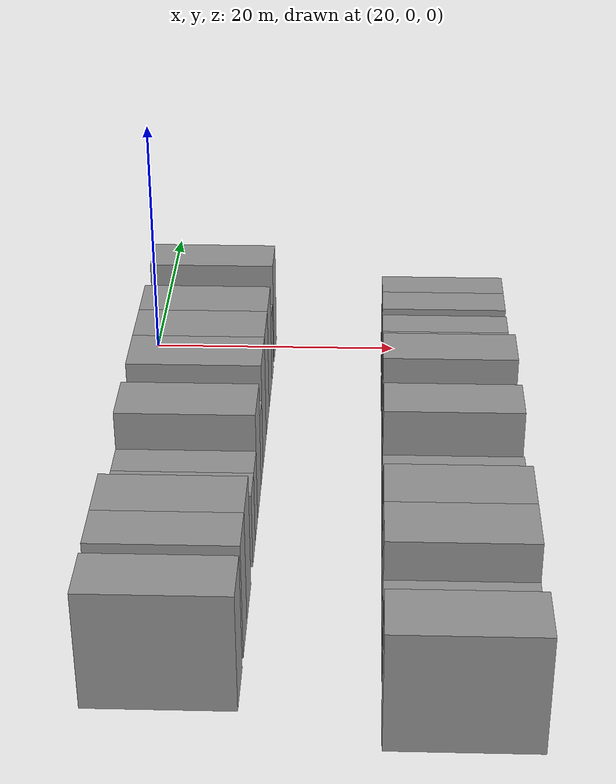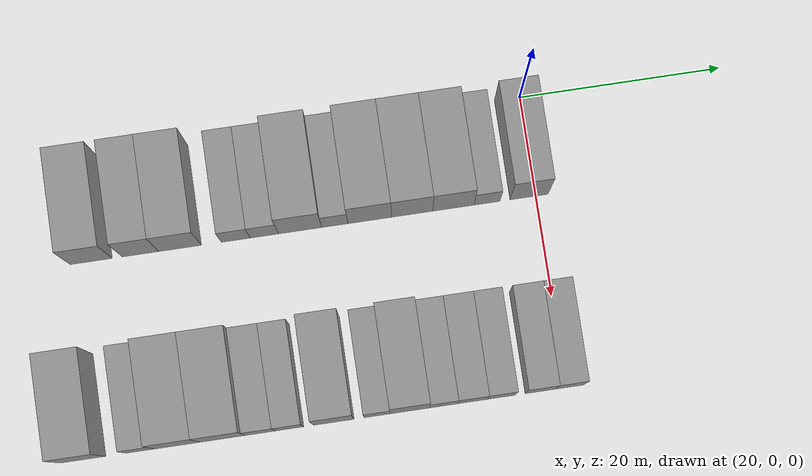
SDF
<sdf version="1.6">
 <world name="default">
  <model name="building_39">
   <static>1</static>
   <pose>25.0000 -43.9781 0 0.000000 0.000000 0.000000</pose>
   <link name="link">
    <pose>0 0 4.50 0 0 0</pose>
    <collision name="collision"><geometry><box><size>10.0000 4.1177 9.0000</size></box></geometry></collision>
    <visual name="visual">
     <cast_shadows>0</cast_shadows>
     <geometry><box><size>10.0000 4.1177 9.0000</size></box></geometry>
     <material>
      <script>
       <uri>model://grey_wall/materials/scripts</uri>
       <uri>model://grey_wall/materials/textures</uri>
       <name>vrc/grey_wall</name>
      </script>
     </material>
    </visual>
   </link>
  </model>
  <model name="building_40">
   <static>1</static>
   <pose>25.0000 -39.1123 0 0.000000 0.000000 0.000000</pose>
   <link name="link">
    <pose>0 0 4.50 0 0 0</pose>
    <collision name="collision"><geometry><box><size>10.0000 3.6139 9.0000</size></box></geometry></collision>
    <visual name="visual">
     <cast_shadows>0</cast_shadows>
     <geometry><box><size>10.0000 3.6139 9.0000</size></box></geometry>
     <material>
      <script>
       <uri>model://grey_wall/materials/scripts</uri>
       <uri>model://grey_wall/materials/textures</uri>
       <name>vrc/grey_wall</name>
      </script>
     </material>
    </visual>
   </link>
  </model>
  <model name="building_41">
   <static>1</static>
   <pose>25.0000 -35.2139 0 0.000000 0.000000 0.000000</pose>
   <link name="link">
    <pose>0 0 4.50 0 0 0</pose>
    <collision name="collision"><geometry><box><size>10.0000 4.1830 9.0000</size></box></geometry></collision>
    <visual name="visual">
     <cast_shadows>0</cast_shadows>
     <geometry><box><size>10.0000 4.1830 9.0000</size></box></geometry>
     <material>
      <script>
       <uri>model://grey_wall/materials/scripts</uri>
       <uri>model://grey_wall/materials/textures</uri>
       <name>vrc/grey_wall</name>
      </script>
     </material>
    </visual>
   </link>
  </model>
  <model name="building_42">
   <static>1</static>
   <pose>25.0000 -29.6990 0 0.000000 0.000000 0.000000</pose>
   <link name="link">
    <pose>0 0 3.00 0 0 0</pose>
    <collision name="collision"><geometry><box><size>10.0000 2.8468 6.0000</size></box></geometry></collision>
    <visual name="visual">
     <cast_shadows>0</cast_shadows>
     <geometry><box><size>10.0000 2.8468 6.0000</size></box></geometry>
     <material>
      <script>
       <uri>model://grey_wall/materials/scripts</uri>
       <uri>model://grey_wall/materials/textures</uri>
       <name>vrc/grey_wall</name>
      </script>
     </material>
    </visual>
   </link>
  </model>
  <model name="building_43">
   <static>1</static>
   <pose>25.0000 -26.8879 0 0.000000 0.000000 0.000000</pose>
   <link name="link">
    <pose>0 0 3.00 0 0 0</pose>
    <collision name="collision"><geometry><box><size>10.0000 2.7754 6.0000</size></box></geometry></collision>
    <visual name="visual">
     <cast_shadows>0</cast_shadows>
     <geometry><box><size>10.0000 2.7754 6.0000</size></box></geometry>
     <material>
      <script>
       <uri>model://grey_wall/materials/scripts</uri>
       <uri>model://grey_wall/materials/textures</uri>
       <name>vrc/grey_wall</name>
      </script>
     </material>
    </visual>
   </link>
  </model>
  <model name="building_44">
   <static>1</static>
   <pose>25.0000 -23.3511 0 0.000000 0.000000 0.000000</pose>
   <link name="link">
    <pose>0 0 4.50 0 0 0</pose>
    <collision name="collision"><geometry><box><size>10.0000 4.2981 9.0000</size></box></geometry></collision>
    <visual name="visual">
     <cast_shadows>0</cast_shadows>
     <geometry><box><size>10.0000 4.2981 9.0000</size></box></geometry>
     <material>
      <script>
       <uri>model://grey_wall/materials/scripts</uri>
       <uri>model://grey_wall/materials/textures</uri>
       <name>vrc/grey_wall</name>
      </script>
     </material>
    </visual>
   </link>
  </model>
  <model name="building_45">
   <static>1</static>
   <pose>25.0000 -19.9102 0 0.000000 0.000000 0.000000</pose>
   <link name="link">
    <pose>0 0 3.00 0 0 0</pose>
    <collision name="collision"><geometry><box><size>10.0000 2.5838 6.0000</size></box></geometry></collision>
    <visual name="visual">
     <cast_shadows>0</cast_shadows>
     <geometry><box><size>10.0000 2.5838 6.0000</size></box></geometry>
     <material>
      <script>
       <uri>model://grey_wall/materials/scripts</uri>
       <uri>model://grey_wall/materials/textures</uri>
       <name>vrc/grey_wall</name>
      </script>
     </material>
    </visual>
   </link>
  </model>
  <model name="building_46">
   <static>1</static>
   <pose>25.0000 -16.4606 0 0.000000 0.000000 0.000000</pose>
   <link name="link">
    <pose>0 0 4.50 0 0 0</pose>
    <collision name="collision"><geometry><box><size>10.0000 4.3153 9.0000</size></box></geometry></collision>
    <visual name="visual">
     <cast_shadows>0</cast_shadows>
     <geometry><box><size>10.0000 4.3153 9.0000</size></box></geometry>
     <material>
      <script>
       <uri>model://grey_wall/materials/scripts</uri>
       <uri>model://grey_wall/materials/textures</uri>
       <name>vrc/grey_wall</name>
      </script>
     </material>
    </visual>
   </link>
  </model>
  <model name="building_47">
   <static>1</static>
   <pose>25.0000 -12.2631 0 0.000000 0.000000 0.000000</pose>
   <link name="link">
    <pose>0 0 4.50 0 0 0</pose>
    <collision name="collision"><geometry><box><size>10.0000 4.0795 9.0000</size></box></geometry></collision>
    <visual name="visual">
     <cast_shadows>0</cast_shadows>
     <geometry><box><size>10.0000 4.0795 9.0000</size></box></geometry>
     <material>
      <script>
       <uri>model://grey_wall/materials/scripts</uri>
       <uri>model://grey_wall/materials/textures</uri>
       <name>vrc/grey_wall</name>
      </script>
     </material>
    </visual>
   </link>
  </model>
  <model name="building_48">
   <static>1</static>
   <pose>25.0000 -8.1758 0 0.000000 0.000000 0.000000</pose>
   <link name="link">
    <pose>0 0 4.50 0 0 0</pose>
    <collision name="collision"><geometry><box><size>10.0000 4.0951 9.0000</size></box></geometry></collision>
    <visual name="visual">
     <cast_shadows>0</cast_shadows>
     <geometry><box><size>10.0000 4.0951 9.0000</size></box></geometry>
     <material>
      <script>
       <uri>model://grey_wall/materials/scripts</uri>
       <uri>model://grey_wall/materials/textures</uri>
       <name>vrc/grey_wall</name>
      </script>
     </material>
    </visual>
   </link>
  </model>
  <model name="building_49">
   <static>1</static>
   <pose>25.0000 -4.8378 0 0.000000 0.000000 0.000000</pose>
   <link name="link">
    <pose>0 0 3.00 0 0 0</pose>
    <collision name="collision"><geometry><box><size>10.0000 2.5807 6.0000</size></box></geometry></collision>
    <visual name="visual">
     <cast_shadows>0</cast_shadows>
     <geometry><box><size>10.0000 2.5807 6.0000</size></box></geometry>
     <material>
      <script>
       <uri>model://grey_wall/materials/scripts</uri>
       <uri>model://grey_wall/materials/textures</uri>
       <name>vrc/grey_wall</name>
      </script>
     </material>
    </visual>
   </link>
  </model>
  <model name="building_50">
   <static>1</static>
   <pose>25.0000 -0.6598 0 0.000000 0.000000 0.000000</pose>
   <link name="link">
    <pose>0 0 4.50 0 0 0</pose>
    <collision name="collision"><geometry><box><size>10.0000 3.7753 9.0000</size></box></geometry></collision>
    <visual name="visual">
     <cast_shadows>0</cast_shadows>
     <geometry><box><size>10.0000 3.7753 9.0000</size></box></geometry>
     <material>
      <script>
       <uri>model://grey_wall/materials/scripts</uri>
       <uri>model://grey_wall/materials/textures</uri>
       <name>vrc/grey_wall</name>
      </script>
     </material>
    </visual>
   </link>
  </model>
  <model name="building_145">
   <static>1</static>
   <pose>44.0000 -47.1643 0 0.000000 0.000000 0.000000</pose>
   <link name="link">
    <pose>0 0 4.50 0 0 0</pose>
    <collision name="collision"><geometry><box><size>10.0000 4.3607 9.0000</size></box></geometry></collision>
    <visual name="visual">
     <cast_shadows>0</cast_shadows>
     <geometry><box><size>10.0000 4.3607 9.0000</size></box></geometry>
     <material>
      <script>
       <uri>model://grey_wall/materials/scripts</uri>
       <uri>model://grey_wall/materials/textures</uri>
       <name>vrc/grey_wall</name>
      </script>
     </material>
    </visual>
   </link>
  </model>
  <model name="building_146">
   <static>1</static>
   <pose>44.0000 -41.5841 0 0.000000 0.000000 0.000000</pose>
   <link name="link">
    <pose>0 0 3.00 0 0 0</pose>
    <collision name="collision"><geometry><box><size>10.0000 2.7998 6.0000</size></box></geometry></collision>
    <visual name="visual">
     <cast_shadows>0</cast_shadows>
     <geometry><box><size>10.0000 2.7998 6.0000</size></box></geometry>
     <material>
      <script>
       <uri>model://grey_wall/materials/scripts</uri>
       <uri>model://grey_wall/materials/textures</uri>
       <name>vrc/grey_wall</name>
      </script>
     </material>
    </visual>
   </link>
  </model>
  <model name="building_147">
   <static>1</static>
   <pose>44.0000 -37.9833 0 0.000000 0.000000 0.000000</pose>
   <link name="link">
    <pose>0 0 4.50 0 0 0</pose>
    <collision name="collision"><geometry><box><size>10.0000 4.4017 9.0000</size></box></geometry></collision>
    <visual name="visual">
     <cast_shadows>0</cast_shadows>
     <geometry><box><size>10.0000 4.4017 9.0000</size></box></geometry>
     <material>
      <script>
       <uri>model://grey_wall/materials/scripts</uri>
       <uri>model://grey_wall/materials/textures</uri>
       <name>vrc/grey_wall</name>
      </script>
     </material>
    </visual>
   </link>
  </model>
  <model name="building_148">
   <static>1</static>
   <pose>44.0000 -33.5647 0 0.000000 0.000000 0.000000</pose>
   <link name="link">
    <pose>0 0 4.50 0 0 0</pose>
    <collision name="collision"><geometry><box><size>10.0000 4.4355 9.0000</size></box></geometry></collision>
    <visual name="visual">
     <cast_shadows>0</cast_shadows>
     <geometry><box><size>10.0000 4.4355 9.0000</size></box></geometry>
     <material>
      <script>
       <uri>model://grey_wall/materials/scripts</uri>
       <uri>model://grey_wall/materials/textures</uri>
       <name>vrc/grey_wall</name>
      </script>
     </material>
    </visual>
   </link>
  </model>
  <model name="building_149">
   <static>1</static>
   <pose>44.0000 -29.8882 0 0.000000 0.000000 0.000000</pose>
   <link name="link">
    <pose>0 0 3.00 0 0 0</pose>
    <collision name="collision"><geometry><box><size>10.0000 2.9176 6.0000</size></box></geometry></collision>
    <visual name="visual">
     <cast_shadows>0</cast_shadows>
     <geometry><box><size>10.0000 2.9176 6.0000</size></box></geometry>
     <material>
      <script>
       <uri>model://grey_wall/materials/scripts</uri>
       <uri>model://grey_wall/materials/textures</uri>
       <name>vrc/grey_wall</name>
      </script>
     </material>
    </visual>
   </link>
  </model>
  <model name="building_150">
   <static>1</static>
   <pose>44.0000 -27.0637 0 0.000000 0.000000 0.000000</pose>
   <link name="link">
    <pose>0 0 3.00 0 0 0</pose>
    <collision name="collision"><geometry><box><size>10.0000 2.7314 6.0000</size></box></geometry></collision>
    <visual name="visual">
     <cast_shadows>0</cast_shadows>
     <geometry><box><size>10.0000 2.7314 6.0000</size></box></geometry>
     <material>
      <script>
       <uri>model://grey_wall/materials/scripts</uri>
       <uri>model://grey_wall/materials/textures</uri>
       <name>vrc/grey_wall</name>
      </script>
     </material>
    </visual>
   </link>
  </model>
  <model name="building_151">
   <static>1</static>
   <pose>44.0000 -22.7349 0 0.000000 0.000000 0.000000</pose>
   <link name="link">
    <pose>0 0 4.50 0 0 0</pose>
    <collision name="collision"><geometry><box><size>10.0000 3.9262 9.0000</size></box></geometry></collision>
    <visual name="visual">
     <cast_shadows>0</cast_shadows>
     <geometry><box><size>10.0000 3.9262 9.0000</size></box></geometry>
     <material>
      <script>
       <uri>model://grey_wall/materials/scripts</uri>
       <uri>model://grey_wall/materials/textures</uri>
       <name>vrc/grey_wall</name>
      </script>
     </material>
    </visual>
   </link>
  </model>
  <model name="building_152">
   <static>1</static>
   <pose>44.0000 -18.5102 0 0.000000 0.000000 0.000000</pose>
   <link name="link">
    <pose>0 0 3.00 0 0 0</pose>
    <collision name="collision"><geometry><box><size>10.0000 2.5233 6.0000</size></box></geometry></collision>
    <visual name="visual">
     <cast_shadows>0</cast_shadows>
     <geometry><box><size>10.0000 2.5233 6.0000</size></box></geometry>
     <material>
      <script>
       <uri>model://grey_wall/materials/scripts</uri>
       <uri>model://grey_wall/materials/textures</uri>
       <name>vrc/grey_wall</name>
      </script>
     </material>
    </visual>
   </link>
  </model>
  <model name="building_153">
   <static>1</static>
   <pose>44.0000 -15.3217 0 0.000000 0.000000 0.000000</pose>
   <link name="link">
    <pose>0 0 4.50 0 0 0</pose>
    <collision name="collision"><geometry><box><size>10.0000 3.8537 9.0000</size></box></geometry></collision>
    <visual name="visual">
     <cast_shadows>0</cast_shadows>
     <geometry><box><size>10.0000 3.8537 9.0000</size></box></geometry>
     <material>
      <script>
       <uri>model://grey_wall/materials/scripts</uri>
       <uri>model://grey_wall/materials/textures</uri>
       <name>vrc/grey_wall</name>
      </script>
     </material>
    </visual>
   </link>
  </model>
  <model name="building_154">
   <static>1</static>
   <pose>44.0000 -12.0341 0 0.000000 0.000000 0.000000</pose>
   <link name="link">
    <pose>0 0 3.00 0 0 0</pose>
    <collision name="collision"><geometry><box><size>10.0000 2.7215 6.0000</size></box></geometry></collision>
    <visual name="visual">
     <cast_shadows>0</cast_shadows>
     <geometry><box><size>10.0000 2.7215 6.0000</size></box></geometry>
     <material>
      <script>
       <uri>model://grey_wall/materials/scripts</uri>
       <uri>model://grey_wall/materials/textures</uri>
       <name>vrc/grey_wall</name>
      </script>
     </material>
    </visual>
   </link>
  </model>
  <model name="building_155">
   <static>1</static>
   <pose>44.0000 -9.2175 0 0.000000 0.000000 0.000000</pose>
   <link name="link">
    <pose>0 0 3.00 0 0 0</pose>
    <collision name="collision"><geometry><box><size>10.0000 2.9118 6.0000</size></box></geometry></collision>
    <visual name="visual">
     <cast_shadows>0</cast_shadows>
     <geometry><box><size>10.0000 2.9118 6.0000</size></box></geometry>
     <material>
      <script>
       <uri>model://grey_wall/materials/scripts</uri>
       <uri>model://grey_wall/materials/textures</uri>
       <name>vrc/grey_wall</name>
      </script>
     </material>
    </visual>
   </link>
  </model>
  <model name="building_156">
   <static>1</static>
   <pose>44.0000 -6.3921 0 0.000000 0.000000 0.000000</pose>
   <link name="link">
    <pose>0 0 3.00 0 0 0</pose>
    <collision name="collision"><geometry><box><size>10.0000 2.7390 6.0000</size></box></geometry></collision>
    <visual name="visual">
     <cast_shadows>0</cast_shadows>
     <geometry><box><size>10.0000 2.7390 6.0000</size></box></geometry>
     <material>
      <script>
       <uri>model://grey_wall/materials/scripts</uri>
       <uri>model://grey_wall/materials/textures</uri>
       <name>vrc/grey_wall</name>
      </script>
     </material>
    </visual>
   </link>
  </model>
  <model name="building_157">
   <static>1</static>
   <pose>44.0000 -2.5382 0 0.000000 0.000000 0.000000</pose>
   <link name="link">
    <pose>0 0 3.00 0 0 0</pose>
    <collision name="collision"><geometry><box><size>10.0000 2.9688 6.0000</size></box></geometry></collision>
    <visual name="visual">
     <cast_shadows>0</cast_shadows>
     <geometry><box><size>10.0000 2.9688 6.0000</size></box></geometry>
     <material>
      <script>
       <uri>model://grey_wall/materials/scripts</uri>
       <uri>model://grey_wall/materials/textures</uri>
       <name>vrc/grey_wall</name>
      </script>
     </material>
    </visual>
   </link>
  </model>
  <model name="building_158">
   <static>1</static>
   <pose>44.0000 0.3325 0 0.000000 0.000000 0.000000</pose>
   <link name="link">
    <pose>0 0 3.00 0 0 0</pose>
    <collision name="collision"><geometry><box><size>10.0000 2.7726 6.0000</size></box></geometry></collision>
    <visual name="visual">
     <cast_shadows>0</cast_shadows>
     <geometry><box><size>10.0000 2.7726 6.0000</size></box></geometry>
     <material>
      <script>
       <uri>model://grey_wall/materials/scripts</uri>
       <uri>model://grey_wall/materials/textures</uri>
       <name>vrc/grey_wall</name>
      </script>
     </material>
    </visual>
   </link>
  </model>
 </world>
</sdf>
